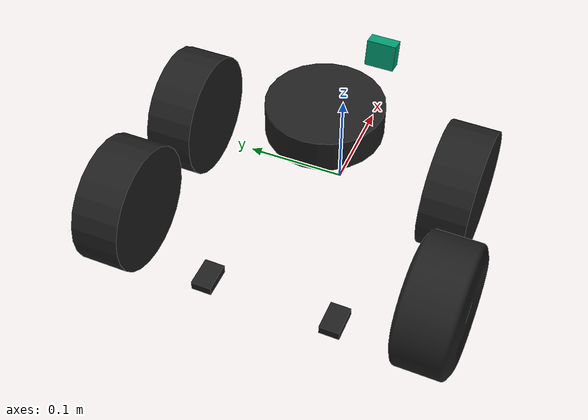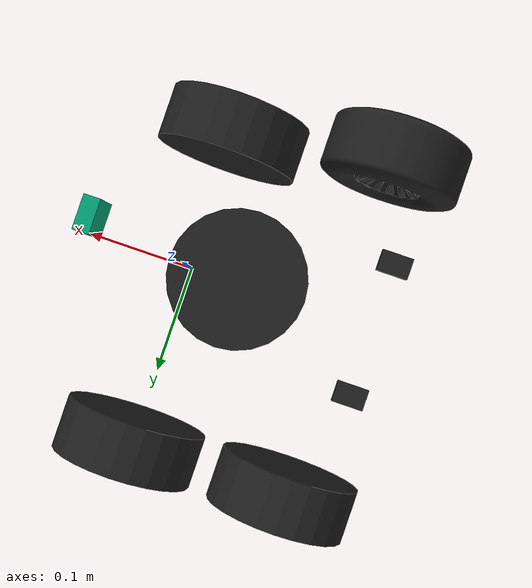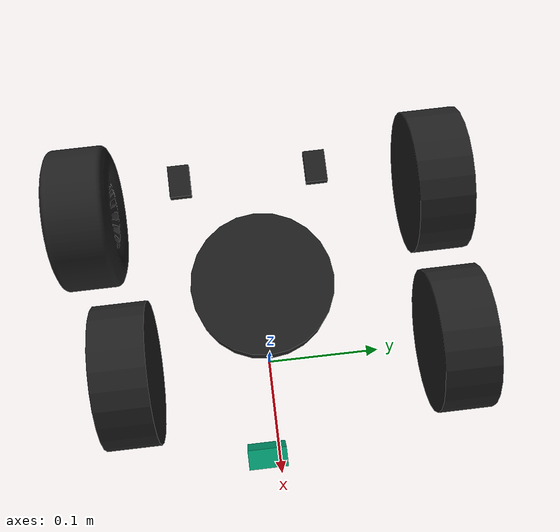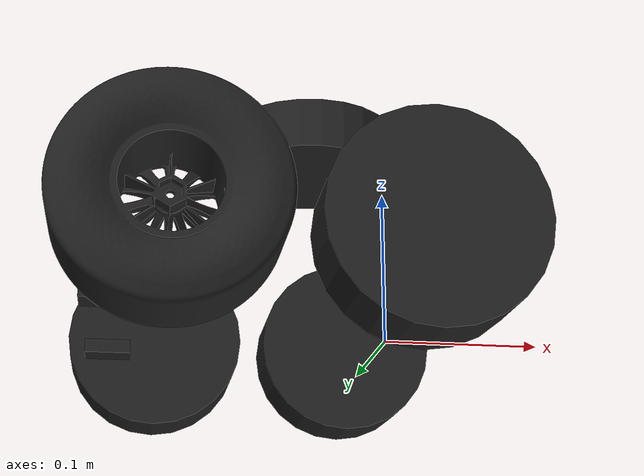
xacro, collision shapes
<?xml version="1.0" ?>
<robot name="turtlebot3_waffle_pi" xmlns:xacro="http://ros.org/wiki/xacro">
  <xacro:include filename="$(find navsea)/urdf/common_properties.xacro"/>
  <xacro:include filename="$(find navsea)/urdf/turtlebot3_waffle_pi.gazebo.xacro"/>

  <link name="base_footprint"/>

  <joint name="base_joint" type="fixed">
    <parent link="base_footprint"/>
    <child link="base_link" />
    <origin xyz="0 0 0.010" rpy="0 0 0"/>
  </joint>

  <link name="base_link">
    <visual>
      <origin xyz="-0.064 0 0.0" rpy="0 0 0"/>
      <geometry>
        <mesh filename="package://navsea/meshes/bases/waffle_pi_base.stl" scale="0.001 0.001 0.001"/>
      </geometry>
    </visual>

    <inertial>
      <origin xyz="0 0 0" rpy="0 0 0"/>
      <mass value="1.3729096e+00"/>
      <inertia ixx="8.7002718e-03" ixy="-4.7576583e-05" ixz="1.1160499e-04"
               iyy="8.6195418e-03" iyz="-3.5422299e-06"
               izz="1.4612727e-02" />
    </inertial>
  </link>

  <joint name="wheel_left_joint" type="continuous">
    <parent link="base_link"/>
    <child link="wheel_left_link"/>
    <origin xyz="0.0 0.144 0.023" rpy="-1.57 0 0"/>
    <axis xyz="0 0 1"/>
  </joint>

  <joint name="wheel_left_back_joint" type="continuous">
    <parent link="base_link"/>
    <child link="wheel_left_back_link"/>
    <origin xyz="-0.144 0.144 0.023" rpy="-1.57 0 0"/>
    <axis xyz="0 0 1"/>
  </joint>

  <link name="wheel_left_link">
    <visual>
      <origin xyz="0 0 0" rpy="0 3.14 0"/>
      <geometry>
        <mesh filename="package://navsea/meshes/wheels/monster_wheel.dae" scale="0.001 0.001 0.001"/>
      </geometry>
      <material name="dark"/>
    </visual>

    <collision>
      <origin xyz="0 0 0.02" rpy="0 3.14 0"/>
	<geometry>
        <cylinder length="0.0475" radius="0.0635"/>
        </geometry>
    </collision>

    <inertial>
      <origin xyz="0 0 0" />
      <mass value="8.8498940e-02" />
      <inertia ixx="1.1175580e-05" ixy="-4.2369783e-11" ixz="-5.9381719e-09"
               iyy="1.1192413e-05" iyz="-1.4400107e-11"
               izz="2.0712558e-05" />
      </inertial>
	<mu1>1000</mu1>
	<mu2>1000</mu2>
  </link>

<link name="wheel_left_back_link">
    <visual>
      <origin xyz="0 0 0" rpy="0 3.14 0"/>
      <geometry>
        <mesh filename="package://navsea/meshes/wheels/monster_wheel.dae" scale="0.001 0.001 0.001"/>
      </geometry>
      <material name="dark"/>
    </visual>

    <collision>
      <origin xyz="0 0 0.02" rpy="0 3.14 0"/>
	<geometry>
        <cylinder length="0.0475" radius="0.0635"/>
        </geometry>
    </collision>

    <inertial>
      <origin xyz="0 0 0" />
      <mass value="8.8498940e-02" />
      <inertia ixx="1.1175580e-05" ixy="-4.2369783e-11" ixz="-5.9381719e-09"
               iyy="1.1192413e-05" iyz="-1.4400107e-11"
               izz="2.0712558e-05" />
      </inertial>
	<mu1>1000</mu1>
	<mu2>1000</mu2>
  </link>

  <joint name="wheel_right_joint" type="continuous">
    <parent link="base_link"/>
    <child link="wheel_right_link"/>
    <origin xyz="0.0 -0.144 0.023" rpy="-1.57 0 0"/>
    <axis xyz="0 0 1"/>
  </joint>

  <joint name="wheel_right_back_joint" type="continuous">
    <parent link="base_link"/>
    <child link="wheel_right_back_link"/>
    <origin xyz="-0.144 -0.144 0.023" rpy="-1.57 0 0"/>
    <axis xyz="0 0 1"/>
  </joint>

  <link name="wheel_right_link">
    <visual>
      <origin xyz="0 0 0" rpy="0 0 0"/>
      <geometry>
        <mesh filename="package://navsea/meshes/wheels/monster_wheel.dae" scale="0.001 0.001 0.001"/>
      </geometry>
      <material name="dark"/>
    </visual>

    <collision>
      <origin xyz="0 0 0.02" rpy="0 0 0"/>
	<geometry>
        <cylinder length="0.0475" radius="0.0635"/>
        </geometry>
    </collision>

    <inertial>
      <origin xyz="0 0 0" />
      <mass value="8.8498940e-02" />
      <inertia ixx="1.1175580e-05" ixy="-4.2369783e-11" ixz="-5.9381719e-09"
               iyy="1.1192413e-05" iyz="-1.4400107e-11"
               izz="2.0712558e-05" />
      </inertial>
	<mu1>1000</mu1>
	<mu2>1000</mu2>
  </link>

<link name="wheel_right_back_link">
    <visual>
      <origin xyz="0 0 0" rpy="0 0 0"/>
      <geometry>
        <mesh filename="package://navsea/meshes/wheels/monster_wheel.dae" scale="0.001 0.001 0.001"/>
      </geometry>
      <material name="dark"/>
    </visual>

    <collision>
      <origin xyz="0 0 0.02" rpy="0 0 0"/>
	<geometry>
	<mesh filename="package://navsea/meshes/wheels/monster_wheel.dae" scale="0.001 0.001 0.001"/>
        </geometry>
    </collision>

    <inertial>
      <origin xyz="0 0 0" />
      <mass value="8.8498940e-02" />
      <inertia ixx="1.1175580e-05" ixy="-4.2369783e-11" ixz="-5.9381719e-09"
               iyy="1.1192413e-05" iyz="-1.4400107e-11"
               izz="2.0712558e-05" />
      </inertial>
	<mu1>1000</mu1>
	<mu2>1000</mu2>
  </link>

  <joint name="caster_back_right_joint" type="fixed">
    <parent link="base_link"/>
    <child link="caster_back_right_link"/>
    <origin xyz="-0.177 -0.064 -0.004" rpy="-1.57 0 0"/>
  </joint>

  <link name="caster_back_right_link">
    <collision>
      <origin xyz="0 0.001 0" rpy="0 0 0"/>
      <geometry>
        <box size="0.030 0.009 0.020"/>
      </geometry>
    </collision>

    <inertial>
      <origin xyz="0 0 0" />
      <mass value="0.005" />
      <inertia ixx="0.001" ixy="0.0" ixz="0.0"
               iyy="0.001" iyz="0.0"
               izz="0.001" />
    </inertial>
  </link>

  <joint name="caster_back_left_joint" type="fixed">
    <parent link="base_link"/>
    <child link="caster_back_left_link"/>
    <origin xyz="-0.177 0.064 -0.004" rpy="-1.57 0 0"/>
  </joint>

  <link name="caster_back_left_link">
    <collision>
      <origin xyz="0 0.001 0" rpy="0 0 0"/>
      <geometry>
        <box size="0.030 0.009 0.020"/>
      </geometry>
    </collision>

    <inertial>
      <origin xyz="0 0 0" />
      <mass value="0.005" />
      <inertia ixx="0.001" ixy="0.0" ixz="0.0"
               iyy="0.001" iyz="0.0"
               izz="0.001" />
    </inertial>
  </link>

  <joint name="imu_joint" type="fixed">
    <parent link="base_link"/>
    <child link="imu_link"/>
    <origin xyz="0.0 0 0.068" rpy="0 0 0"/>
  </joint>

  <link name="imu_link"/>

<!-- _____________________________________________ORIGINAL SCAN LINK___________________________________________-->

  <joint name="scan_joint" type="fixed">
    <parent link="base_link"/>
    <child link="base_scan"/>
    <origin xyz="-0.064 0 0.122" rpy="0 0 0"/>
  </joint>

  <link name="base_scan">
    <visual>
      <origin xyz="0 0 0.0" rpy="0 0 0"/>
      <geometry>
        <mesh filename="package://navsea/meshes/sensors/lds.stl" scale="0.001 0.001 0.001"/>
      </geometry>
      <material name="dark"/>
    </visual>

    <collision>
      <origin xyz="0.015 0 -0.0065" rpy="0 0 0"/>
      <geometry>
        <cylinder length="0.0315" radius="0.055"/>
      </geometry>
    </collision>

    <inertial>
      <mass value="0.114" />
      <origin xyz="0 0 0" />
      <inertia ixx="0.001" ixy="0.0" ixz="0.0"
               iyy="0.001" iyz="0.0"
               izz="0.001" />
    </inertial>
  </link>

<!-- _____________________________________________DUAL SCAN LINK___________________________________________-->
<!-- _____________________________________________ CAMERA LINK___________________________________________-->

  <joint name="camera_joint" type="fixed">
    <origin xyz="0.073 -0.011 0.084" rpy="0 0.1745 0"/>
    <parent link="base_link"/>
    <child link="camera_link"/>
  </joint>

  <link name="camera_link">
    <collision>
      <origin xyz="0.005 0.0 0.013" rpy="0 0 0"/>
      <geometry>
        <box size="0.015 0.030 0.027"/>
      </geometry>
    </collision>
  </link>

  <joint name="camera_rgb_joint" type="fixed">
    <origin xyz="0.003 0.011 0.009" rpy="0 0 0"/>
    <parent link="camera_link"/>
    <child link="camera_rgb_frame"/>
  </joint>
  <link name="camera_rgb_frame"/>

  <joint name="camera_rgb_optical_joint" type="fixed">
    <origin xyz="0 0 0" rpy="-1.57 0 -1.57"/>
    <parent link="camera_rgb_frame"/>
    <child link="camera_rgb_optical_frame"/>
  </joint>
  <link name="camera_rgb_optical_frame"/>
</robot>
